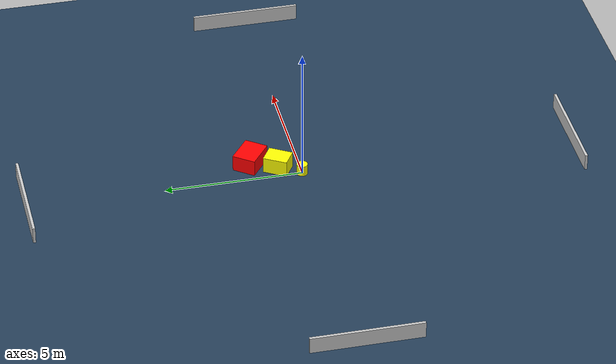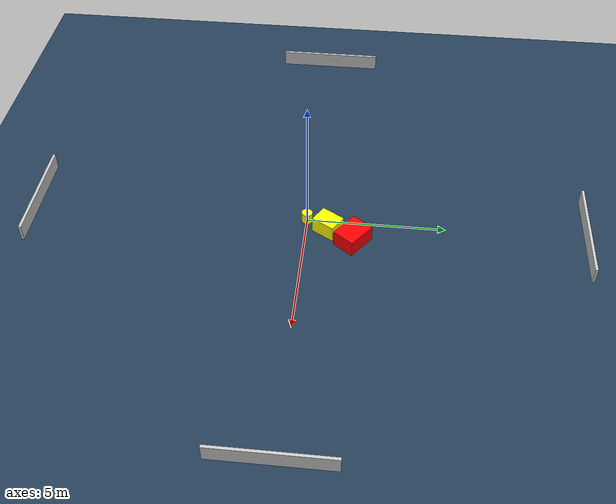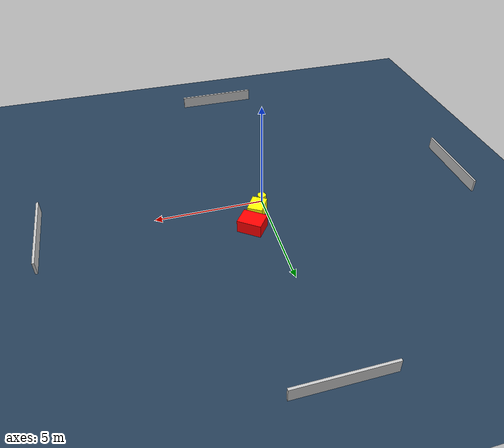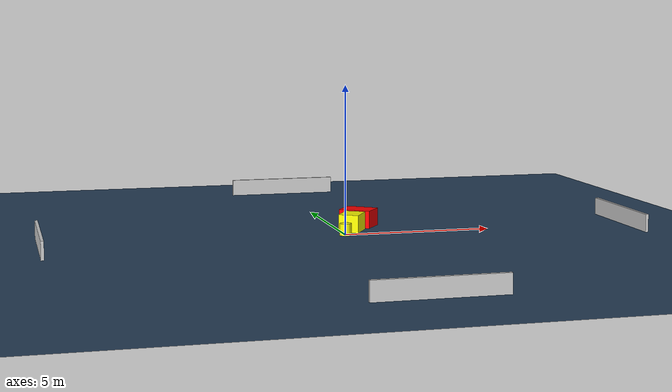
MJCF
<?xml version="1.0" ?>
<mujoco model="generated_environment">
  <option timestep="0.01" integrator="RK4" cone="elliptic"/>
  <default>
    <geom density="1"/>
  </default>
  <asset>
    <texture builtin="gradient" height="3072" name="skybox" rgb1="0.3 0.5 0.7" rgb2="0 0 0" type="skybox" width="512"/>
    <texture builtin="checker" height="300" name="groundplane" rgb1="0.2 0.3 0.4" rgb2="0.1 0.2 0.3" type="2d" width="300"/>
    <material name="groundplane" reflectance="0.2" texrepeat="5 5" texture="groundplane"/>
  </asset>
  <worldbody>
    <light dir="0 0 -1" directional="true" pos="0 0 1.5"/>
    <geom condim="3" friction="0.5 0.005 0.001" material="groundplane" name="floor" pos="0 0 0" size="0 0 0.05" type="plane"/>
    <body name="walls">
      <geom name="wall_1" condim="4" pos="-10.0 0.0 0.3" rgba="0.800000011920929 0.800000011920929 0.800000011920929 1.0" size="0.05 2.0 0.3" type="box"/>
      <geom name="wall_2" condim="4" pos="10.0 0.0 0.3" rgba="0.800000011920929 0.800000011920929 0.800000011920929 1.0" size="0.05 2.0 0.3" type="box"/>
      <geom name="wall_3" condim="4" pos="0.0 -10.0 0.3" rgba="0.800000011920929 0.800000011920929 0.800000011920929 1.0" size="2.0 0.05 0.3" type="box"/>
      <geom name="wall_4" condim="4" pos="0.0 10.0 0.3" rgba="0.800000011920929 0.800000011920929 0.800000011920929 1.0" size="2.0 0.05 0.3" type="box"/>
    </body>
    <body name="robot">
      <joint name="joint_x" type="slide" pos="0 0 0" axis="1 0 0"/>
      <joint name="joint_y" type="slide" pos="0 0 0" axis="0 1 0"/>
      <geom name="robot" type="cylinder" pos="0.0 0.0 0.2" size="0.2 0.2 0.0" mass="5.0" friction="1.0 0.005 0.0001" condim="4" rgba="1.0 1.0 0.0 1.0"/>
    </body>
    <body name="obstacle_1_movable">
      <geom name="obstacle_1_movable" condim="4" pos="0.43541855654337924 0.7939771375274233 0.3" euler="0 0 328.58319393289935" friction="0.0 0.005 0.001" rgba="1.0 1.0 0.0 1.0" size="0.34498538427362135 0.4437206956172791 0.3" type="box" mass="0.1"/>
      <joint type="free"/>
    </body>
    <body name="obstacle_2_static">
      <geom name="obstacle_2_static" condim="4" pos="0.9167895827458981 1.7134867026432612 0.3" euler="0 0 233.2747054205559" friction="0.0 0.005 0.001" rgba="1.0 0.0 0.0 1.0" size="0.4280809810475833 0.5535711272617689 0.3" type="box"/>
    </body>
  </worldbody>
  <actuator>
    <motor name="actuator_x" joint="joint_x" gear="1" ctrlrange="-1 1"/>
    <motor name="actuator_y" joint="joint_y" gear="1" ctrlrange="-1 1"/>
  </actuator>
</mujoco>
